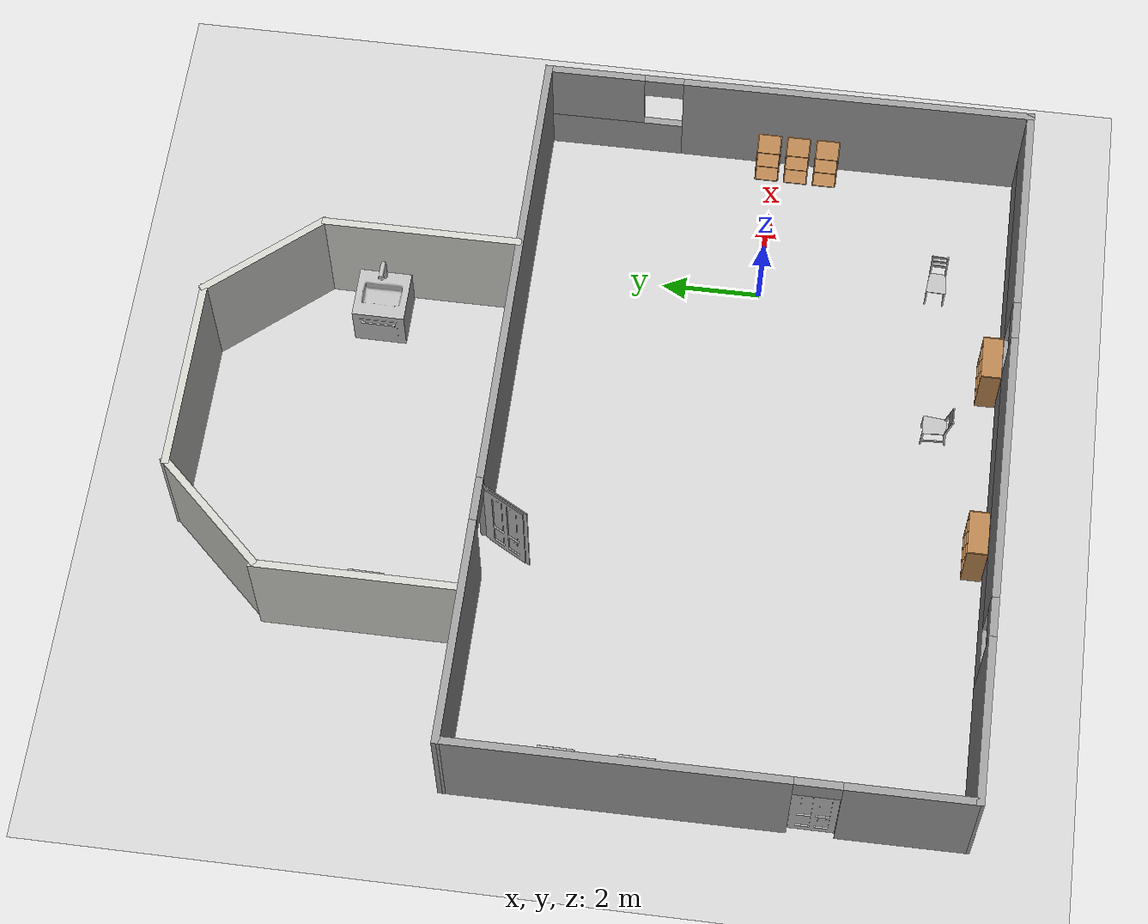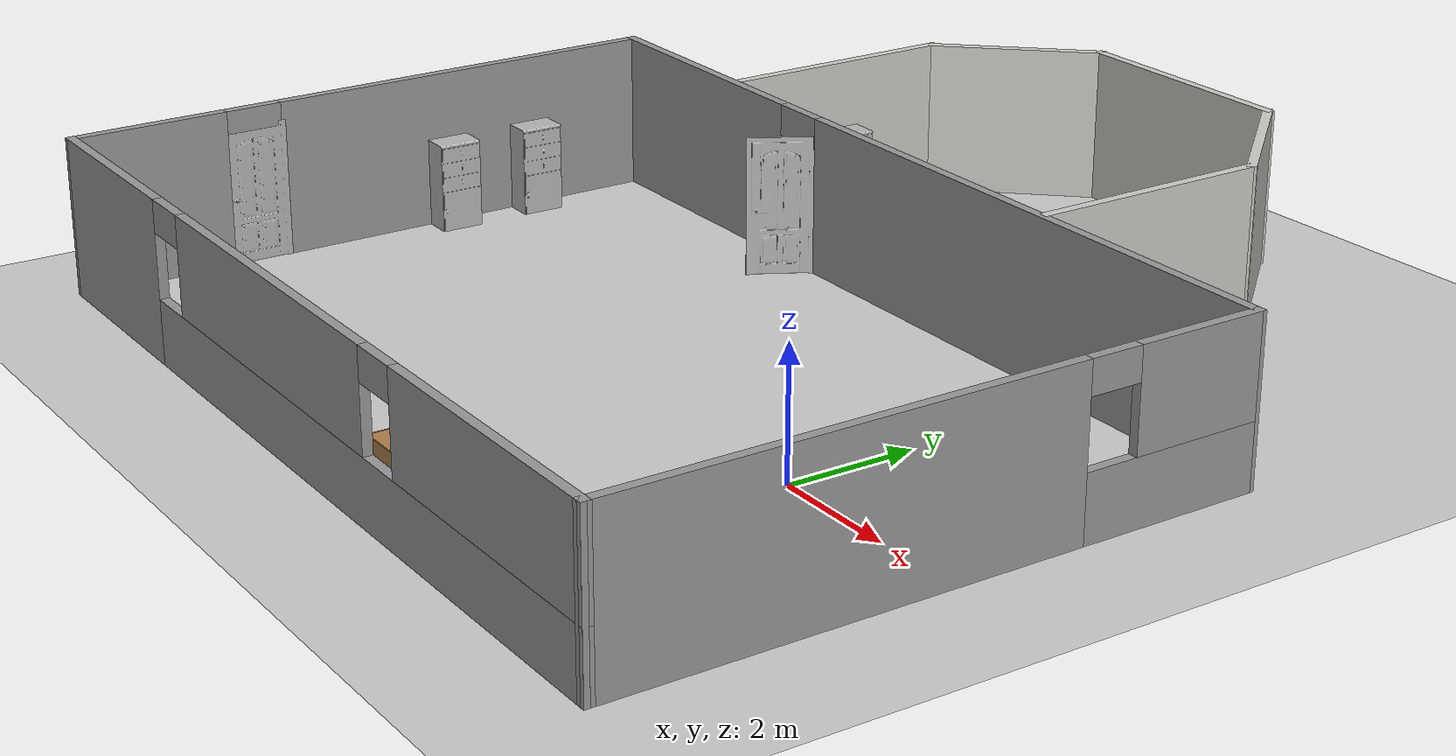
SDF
<sdf version="1.6">
 <world name="default">
  <light name="sun" type="directional">
   <pose>0 0 10 0 -0 0</pose>
   <diffuse>0.8 0.8 0.8 1</diffuse>
   <specular>0.2 0.2 0.2 1</specular>
   <attenuation>
    <range>1000</range>
    <constant>0.9</constant>
    <linear>0.01</linear>
    <quadratic>0.001</quadratic>
   </attenuation>
   <direction>-0.5 0.1 -0.9</direction>
  </light>
  <model name="ground_plane">
   <static>1</static>
   <link name="link">
    <collision name="collision">
     <geometry><plane><normal>0 0 1</normal><size>100 100</size></plane></geometry>
     <surface>
      <contact><collide_bitmask>65535</collide_bitmask></contact>
      <friction><ode><mu>100</mu><mu2>50</mu2></ode></friction>
     </surface>
    </collision>
    <visual name="visual">
     <cast_shadows>0</cast_shadows>
     <geometry><plane><normal>0 0 1</normal><size>100 100</size></plane></geometry>
     <material>
      <script><uri>file://media/materials/scripts/gazebo.material</uri><name>Gazebo/Grey</name></script>
     </material>
    </visual>
   </link>
  </model>
  <gravity>0 0 -9.8</gravity>
  <magnetic_field>6e-06 2.3e-05 -4.2e-05</magnetic_field>
  <atmosphere type="adiabatic"/>
  <physics name="default_physics" default="0" type="ode">
   <max_step_size>0.001</max_step_size>
   <real_time_factor>1</real_time_factor>
   <real_time_update_rate>1000</real_time_update_rate>
  </physics>
  <scene><ambient>0.4 0.4 0.4 1</ambient><background>0.7 0.7 0.7 1</background><shadows>1</shadows></scene>
  <audio><device>default</device></audio>
  <spherical_coordinates>
   <surface_model>EARTH_WGS84</surface_model>
   <latitude_deg>0</latitude_deg>
   <longitude_deg>0</longitude_deg>
   <elevation>0</elevation>
   <heading_deg>0</heading_deg>
  </spherical_coordinates>
  <model name="Hospital_Room">
   <pose>-4.04031 2.87685 0 0 -0 0</pose>
   <link name="Wall_0">
    <pose>0.023068 -7.9212 0 0 -0 -0.003591</pose>
    <visual name="Wall_0_Visual_0">
     <pose>-5.83368 0 1.25 0 -0 0</pose>
     <geometry><box><size>3.33264 0.15 2.5</size></box></geometry>
     <material>
      <script><uri>file://media/materials/scripts/gazebo.material</uri><name>Gazebo/Grey</name></script>
      <ambient>1 1 1 1</ambient>
     </material>
     <meta><layer>0</layer></meta>
    </visual>
    <collision name="Wall_0_Collision_0">
     <geometry><box><size>3.33264 0.15 2.5</size></box></geometry>
     <pose>-5.83368 0 1.25 0 -0 0</pose>
    </collision>
    <visual name="Wall_0_Visual_1">
     <pose>1.66632 0 0.5 0 -0 0</pose>
     <geometry><box><size>11.6674 0.15 1</size></box></geometry>
     <material>
      <script><uri>file://media/materials/scripts/gazebo.material</uri><name>Gazebo/Grey</name></script>
      <ambient>1 1 1 1</ambient>
     </material>
     <meta><layer>0</layer></meta>
    </visual>
    <collision name="Wall_0_Collision_1">
     <geometry><box><size>11.6674 0.15 1</size></box></geometry>
     <pose>1.66632 0 0.5 0 -0 0</pose>
    </collision>
    <visual name="Wall_0_Visual_2">
     <pose>-0.574742 0 1.75 0 -0 0</pose>
     <geometry><box><size>5.58524 0.15 1.5</size></box></geometry>
     <material>
      <script><uri>file://media/materials/scripts/gazebo.material</uri><name>Gazebo/Grey</name></script>
      <ambient>1 1 1 1</ambient>
     </material>
     <meta><layer>0</layer></meta>
    </visual>
    <collision name="Wall_0_Collision_2">
     <geometry><box><size>5.58524 0.15 1.5</size></box></geometry>
     <pose>-0.574742 0 1.75 0 -0 0</pose>
    </collision>
    <visual name="Wall_0_Visual_3">
     <pose>5.25894 0 1.75 0 -0 0</pose>
     <geometry><box><size>4.48212 0.15 1.5</size></box></geometry>
     <material>
      <script><uri>file://media/materials/scripts/gazebo.material</uri><name>Gazebo/Grey</name></script>
      <ambient>1 1 1 1</ambient>
     </material>
     <meta><layer>0</layer></meta>
    </visual>
    <collision name="Wall_0_Collision_3">
     <geometry><box><size>4.48212 0.15 1.5</size></box></geometry>
     <pose>5.25894 0 1.75 0 -0 0</pose>
    </collision>
    <visual name="Wall_0_Visual_4">
     <pose>-3.76736 0 2.25 0 -0 0</pose>
     <geometry><box><size>0.8 0.15 0.5</size></box></geometry>
     <material>
      <script><uri>file://media/materials/scripts/gazebo.material</uri><name>Gazebo/Grey</name></script>
      <ambient>1 1 1 1</ambient>
     </material>
     <meta><layer>0</layer></meta>
    </visual>
    <collision name="Wall_0_Collision_4">
     <geometry><box><size>0.8 0.15 0.5</size></box></geometry>
     <pose>-3.76736 0 2.25 0 -0 0</pose>
    </collision>
    <visual name="Wall_0_Visual_5">
     <pose>2.61788 0 2.25 0 -0 0</pose>
     <geometry><box><size>0.8 0.15 0.5</size></box></geometry>
     <material>
      <script><uri>file://media/materials/scripts/gazebo.material</uri><name>Gazebo/Grey</name></script>
      <ambient>1 1 1 1</ambient>
     </material>
     <meta><layer>0</layer></meta>
    </visual>
    <collision name="Wall_0_Collision_5">
     <geometry><box><size>0.8 0.15 0.5</size></box></geometry>
     <pose>2.61788 0 2.25 0 -0 0</pose>
    </collision>
   </link>
   <link name="Wall_1">
    <pose>7.42506 -3.02292 0 0 -0 1.57548</pose>
    <visual name="Wall_1_Visual_0">
     <pose>-1.42771 0 1.25 0 -0 0</pose>
     <geometry><box><size>7.14458 0.15 2.5</size></box></geometry>
     <material>
      <script><uri>file://media/materials/scripts/gazebo.material</uri><name>Gazebo/Grey</name></script>
      <ambient>1 1 1 1</ambient>
     </material>
     <meta><layer>0</layer></meta>
    </visual>
    <collision name="Wall_1_Collision_0">
     <geometry><box><size>7.14458 0.15 2.5</size></box></geometry>
     <pose>-1.42771 0 1.25 0 -0 0</pose>
    </collision>
    <visual name="Wall_1_Visual_1">
     <pose>3.57229 0 0.5 0 -0 0</pose>
     <geometry><box><size>2.85542 0.15 1</size></box></geometry>
     <material>
      <script><uri>file://media/materials/scripts/gazebo.material</uri><name>Gazebo/Grey</name></script>
      <ambient>1 1 1 1</ambient>
     </material>
     <meta><layer>0</layer></meta>
    </visual>
    <collision name="Wall_1_Collision_1">
     <geometry><box><size>2.85542 0.15 1</size></box></geometry>
     <pose>3.57229 0 0.5 0 -0 0</pose>
    </collision>
    <visual name="Wall_1_Visual_2">
     <pose>3.97229 0 1.75 0 -0 0</pose>
     <geometry><box><size>2.05542 0.15 1.5</size></box></geometry>
     <material>
      <script><uri>file://media/materials/scripts/gazebo.material</uri><name>Gazebo/Grey</name></script>
      <ambient>1 1 1 1</ambient>
     </material>
     <meta><layer>0</layer></meta>
    </visual>
    <collision name="Wall_1_Collision_2">
     <geometry><box><size>2.05542 0.15 1.5</size></box></geometry>
     <pose>3.97229 0 1.75 0 -0 0</pose>
    </collision>
    <visual name="Wall_1_Visual_3">
     <pose>2.54458 0 2.25 0 -0 0</pose>
     <geometry><box><size>0.8 0.15 0.5</size></box></geometry>
     <material>
      <script><uri>file://media/materials/scripts/gazebo.material</uri><name>Gazebo/Grey</name></script>
      <ambient>1 1 1 1</ambient>
     </material>
     <meta><layer>0</layer></meta>
    </visual>
    <collision name="Wall_1_Collision_3">
     <geometry><box><size>0.8 0.15 0.5</size></box></geometry>
     <pose>2.54458 0 2.25 0 -0 0</pose>
    </collision>
   </link>
   <link name="Wall_13">
    <collision name="Wall_13_Collision">
     <geometry><box><size>4 0.15 2.5</size></box></geometry>
     <pose>0 0 1.25 0 -0 0</pose>
    </collision>
    <visual name="Wall_13_Visual">
     <pose>0 0 1.25 0 -0 0</pose>
     <geometry><box><size>4 0.15 2.5</size></box></geometry>
     <material>
      <script><uri>file://media/materials/scripts/gazebo.material</uri><name>Gazebo/CeilingTiled</name></script>
      <ambient>1 1 1 1</ambient>
     </material>
     <meta><layer>0</layer></meta>
    </visual>
    <pose>-4.38514 3.96612 0 0 -0 1.5708</pose>
   </link>
   <link name="Wall_14">
    <collision name="Wall_14_Collision">
     <geometry><box><size>2.91751 0.15 2.5</size></box></geometry>
     <pose>0 0 1.25 0 -0 0</pose>
    </collision>
    <visual name="Wall_14_Visual">
     <pose>0 0 1.25 0 -0 0</pose>
     <geometry><box><size>2.91751 0.15 2.5</size></box></geometry>
     <material>
      <script><uri>file://media/materials/scripts/gazebo.material</uri><name>Gazebo/CeilingTiled</name></script>
      <ambient>1 1 1 1</ambient>
     </material>
     <meta><layer>0</layer></meta>
    </visual>
    <pose>-3.40219 6.90413 0 0 -0 0.821445</pose>
   </link>
   <link name="Wall_15">
    <collision name="Wall_15_Collision">
     <geometry><box><size>4 0.15 2.5</size></box></geometry>
     <pose>0 0 1.25 0 -0 0</pose>
    </collision>
    <visual name="Wall_15_Visual">
     <pose>0 0 1.25 0 -0 0</pose>
     <geometry><box><size>4 0.15 2.5</size></box></geometry>
     <material>
      <script><uri>file://media/materials/scripts/gazebo.material</uri><name>Gazebo/CeilingTiled</name></script>
      <ambient>1 1 1 1</ambient>
     </material>
     <meta><layer>0</layer></meta>
    </visual>
    <pose>-0.534694 7.91715 0 0 -0 0</pose>
   </link>
   <link name="Wall_16">
    <collision name="Wall_16_Collision">
     <geometry><box><size>2.89764 0.15 2.5</size></box></geometry>
     <pose>0 0 1.25 0 -0 0</pose>
    </collision>
    <visual name="Wall_16_Visual">
     <pose>0 0 1.25 0 -0 0</pose>
     <geometry><box><size>2.89764 0.15 2.5</size></box></geometry>
     <material>
      <script><uri>file://media/materials/scripts/gazebo.material</uri><name>Gazebo/CeilingTiled</name></script>
      <ambient>1 1 1 1</ambient>
     </material>
     <meta><layer>0</layer></meta>
    </visual>
    <pose>2.29431 6.88267 0 0 -0 -0.852606</pose>
   </link>
   <link name="Wall_17">
    <collision name="Wall_17_Collision">
     <geometry><box><size>4 0.15 2.5</size></box></geometry>
     <pose>0 0 1.25 0 -0 0</pose>
    </collision>
    <visual name="Wall_17_Visual">
     <pose>0 0 1.25 0 -0 0</pose>
     <geometry><box><size>4 0.15 2.5</size></box></geometry>
     <material>
      <script><uri>file://media/materials/scripts/gazebo.material</uri><name>Gazebo/CeilingTiled</name></script>
      <ambient>1 1 1 1</ambient>
     </material>
     <meta><layer>0</layer></meta>
    </visual>
    <pose>3.19831 3.88273 0 0 -0 -1.5708</pose>
   </link>
   <link name="Wall_2">
    <pose>-0.023068 1.92869 0 0 -0 3.138</pose>
    <visual name="Wall_2_Visual_0">
     <pose>-2.72208 0 1.25 0 -0 0</pose>
     <geometry><box><size>9.55585 0.15 2.5</size></box></geometry>
     <material>
      <script><uri>file://media/materials/scripts/gazebo.material</uri><name>Gazebo/Grey</name></script>
      <ambient>1 1 1 1</ambient>
     </material>
     <meta><layer>0</layer></meta>
    </visual>
    <collision name="Wall_2_Collision_0">
     <geometry><box><size>9.55585 0.15 2.5</size></box></geometry>
     <pose>-2.72208 0 1.25 0 -0 0</pose>
    </collision>
    <visual name="Wall_2_Visual_1">
     <pose>5.22792 0 1.25 0 -0 0</pose>
     <geometry><box><size>4.54415 0.15 2.5</size></box></geometry>
     <material>
      <script><uri>file://media/materials/scripts/gazebo.material</uri><name>Gazebo/Grey</name></script>
      <ambient>1 1 1 1</ambient>
     </material>
     <meta><layer>0</layer></meta>
    </visual>
    <collision name="Wall_2_Collision_1">
     <geometry><box><size>4.54415 0.15 2.5</size></box></geometry>
     <pose>5.22792 0 1.25 0 -0 0</pose>
    </collision>
    <visual name="Wall_2_Visual_2">
     <pose>2.50585 0 2.25 0 -0 0</pose>
     <geometry><box><size>0.9 0.15 0.5</size></box></geometry>
     <material>
      <script><uri>file://media/materials/scripts/gazebo.material</uri><name>Gazebo/Grey</name></script>
      <ambient>1 1 1 1</ambient>
     </material>
     <meta><layer>0</layer></meta>
    </visual>
    <collision name="Wall_2_Collision_2">
     <geometry><box><size>0.9 0.15 0.5</size></box></geometry>
     <pose>2.50585 0 2.25 0 -0 0</pose>
    </collision>
   </link>
   <link name="Wall_20">
    <pose>-7.42506 -2.96959 0 0 -0 -1.56611</pose>
    <visual name="Wall_20_Visual_0">
     <pose>-1.71575 0 1.25 0 -0 0</pose>
     <geometry><box><size>6.5685 0.15 2.5</size></box></geometry>
     <material>
      <script><uri>file://media/materials/scripts/gazebo.material</uri><name>Gazebo/Grey</name></script>
      <ambient>1 1 1 1</ambient>
     </material>
     <meta><layer>0</layer></meta>
    </visual>
    <collision name="Wall_20_Collision_0">
     <geometry><box><size>6.5685 0.15 2.5</size></box></geometry>
     <pose>-1.71575 0 1.25 0 -0 0</pose>
    </collision>
    <visual name="Wall_20_Visual_1">
     <pose>3.73425 0 1.25 0 -0 0</pose>
     <geometry><box><size>2.5315 0.15 2.5</size></box></geometry>
     <material>
      <script><uri>file://media/materials/scripts/gazebo.material</uri><name>Gazebo/Grey</name></script>
      <ambient>1 1 1 1</ambient>
     </material>
     <meta><layer>0</layer></meta>
    </visual>
    <collision name="Wall_20_Collision_1">
     <geometry><box><size>2.5315 0.15 2.5</size></box></geometry>
     <pose>3.73425 0 1.25 0 -0 0</pose>
    </collision>
    <visual name="Wall_20_Visual_2">
     <pose>2.0185 0 2.25 0 -0 0</pose>
     <geometry><box><size>0.9 0.15 0.5</size></box></geometry>
     <material>
      <script><uri>file://media/materials/scripts/gazebo.material</uri><name>Gazebo/Grey</name></script>
      <ambient>1 1 1 1</ambient>
     </material>
     <meta><layer>0</layer></meta>
    </visual>
    <collision name="Wall_20_Collision_2">
     <geometry><box><size>0.9 0.15 0.5</size></box></geometry>
     <pose>2.0185 0 2.25 0 -0 0</pose>
    </collision>
   </link>
   <static>1</static>
  </model>
  <model name="chair">
   <static>1</static>
   <link name="link">
    <collision name="collision">
     <pose>0 0 0.3 0 -0 0</pose>
     <geometry><mesh><uri>model://chair/meshes/chair.stl</uri></mesh></geometry>
     <surface>
      <friction><ode><mu>1</mu><mu2>1</mu2></ode></friction>
      <contact><ode><kp>1e+07</kp><kd>1</kd><min_depth>0.001</min_depth><max_vel>0.1</max_vel></ode></contact>
     </surface>
    </collision>
    <visual name="visual">
     <pose>0 0 0.3 0 -0 0</pose>
     <geometry><mesh><uri>model://chair/meshes/chair.stl</uri></mesh></geometry>
    </visual>
   </link>
   <pose>-3.13467 -4.06597 -0.450808 0 -0 1.57531</pose>
  </model>
  <model name="chair_clone">
   <static>1</static>
   <link name="link">
    <collision name="collision">
     <pose>0 0 0.3 0 -0 0</pose>
     <geometry><mesh><uri>model://chair/meshes/chair.stl</uri></mesh></geometry>
     <surface>
      <friction><ode><mu>1</mu><mu2>1</mu2></ode></friction>
      <contact><ode><kp>1e+07</kp><kd>1</kd><min_depth>0.001</min_depth><max_vel>0.1</max_vel></ode></contact>
     </surface>
    </collision>
    <visual name="visual">
     <pose>0 0 0.3 0 -0 0</pose>
     <geometry><mesh><uri>model://chair/meshes/chair.stl</uri></mesh></geometry>
    </visual>
   </link>
   <pose>0.765354 -3.8963 -0.450808 0 -0 3.10751</pose>
  </model>
  <model name="faucet">
   <static>1</static>
   <link name="link">
    <collision name="collision">
     <geometry><mesh><uri>model://faucet/meshes/f.stl</uri></mesh></geometry>
     <surface>
      <friction><ode><mu>1</mu><mu2>1</mu2></ode></friction>
      <contact><ode><kp>1e+07</kp><kd>1</kd><min_depth>0.001</min_depth><max_vel>0.1</max_vel></ode></contact>
     </surface>
    </collision>
    <visual name="visual"><geometry><mesh><uri>model://faucet/meshes/f.stl</uri></mesh></geometry></visual>
   </link>
   <pose>-1.12536 7.55333 0 0 -0 1.56284</pose>
  </model>
  <model name="cupboard">
   <static>1</static>
   <link name="link">
    <collision name="collision">
     <geometry><mesh><uri>model://cupboard/meshes/cb.stl</uri></mesh></geometry>
     <surface>
      <friction><ode><mu>1</mu><mu2>1</mu2></ode></friction>
      <contact><ode><kp>1e+07</kp><kd>1</kd><min_depth>0.001</min_depth><max_vel>0.1</max_vel></ode></contact>
     </surface>
    </collision>
    <visual name="visual"><geometry><mesh><uri>model://cupboard/meshes/cb.stl</uri></mesh></geometry></visual>
   </link>
   <pose>-11.2325 1.22177 0 0 -0 1.55635</pose>
  </model>
  <model name="cupboard_clone">
   <static>1</static>
   <link name="link">
    <collision name="collision">
     <geometry><mesh><uri>model://cupboard/meshes/cb.stl</uri></mesh></geometry>
     <surface>
      <friction><ode><mu>1</mu><mu2>1</mu2></ode></friction>
      <contact><ode><kp>1e+07</kp><kd>1</kd><min_depth>0.001</min_depth><max_vel>0.1</max_vel></ode></contact>
     </surface>
    </collision>
    <visual name="visual"><geometry><mesh><uri>model://cupboard/meshes/cb.stl</uri></mesh></geometry></visual>
   </link>
   <pose>-11.2385 2.73171 0 0 -0 1.55635</pose>
  </model>
  <model name="bookshelf">
   <static>1</static>
   <link name="link">
    <inertial><mass>1</mass></inertial>
    <collision name="back">
     <pose>0 0.005 0.6 0 -0 0</pose>
     <geometry><box><size>0.9 0.01 1.2</size></box></geometry>
    </collision>
    <visual name="visual1">
     <pose>0 0.005 0.6 0 -0 0</pose>
     <geometry><box><size>0.9 0.01 1.2</size></box></geometry>
     <material>
      <script><uri>file://media/materials/scripts/gazebo.material</uri><name>Gazebo/Wood</name></script>
     </material>
    </visual>
    <collision name="left_side">
     <pose>0.45 -0.195 0.6 0 -0 0</pose>
     <geometry><box><size>0.02 0.4 1.2</size></box></geometry>
    </collision>
    <visual name="visual2">
     <pose>0.45 -0.195 0.6 0 -0 0</pose>
     <geometry><box><size>0.02 0.4 1.2</size></box></geometry>
     <material>
      <script><uri>file://media/materials/scripts/gazebo.material</uri><name>Gazebo/Wood</name></script>
     </material>
    </visual>
    <collision name="right_side">
     <pose>-0.45 -0.195 0.6 0 -0 0</pose>
     <geometry><box><size>0.02 0.4 1.2</size></box></geometry>
    </collision>
    <visual name="visual3">
     <pose>-0.45 -0.195 0.6 0 -0 0</pose>
     <geometry><box><size>0.02 0.4 1.2</size></box></geometry>
     <material>
      <script><uri>file://media/materials/scripts/gazebo.material</uri><name>Gazebo/Wood</name></script>
     </material>
    </visual>
    <collision name="bottom">
     <pose>0 -0.195 0.03 0 -0 0</pose>
     <geometry><box><size>0.88 0.4 0.06</size></box></geometry>
    </collision>
    <visual name="visual4">
     <pose>0 -0.195 0.03 0 -0 0</pose>
     <geometry><box><size>0.88 0.4 0.06</size></box></geometry>
     <material>
      <script><uri>file://media/materials/scripts/gazebo.material</uri><name>Gazebo/Wood</name></script>
     </material>
    </visual>
    <collision name="top">
     <pose>0 -0.195 1.19 0 -0 0</pose>
     <geometry><box><size>0.88 0.4 0.02</size></box></geometry>
    </collision>
    <visual name="visual5">
     <pose>0 -0.195 1.19 0 -0 0</pose>
     <geometry><box><size>0.88 0.4 0.02</size></box></geometry>
     <material>
      <script><uri>file://media/materials/scripts/gazebo.material</uri><name>Gazebo/Wood</name></script>
     </material>
    </visual>
    <collision name="low_shelf">
     <pose>0 -0.195 0.43 0 -0 0</pose>
     <geometry><box><size>0.88 0.4 0.02</size></box></geometry>
    </collision>
    <visual name="visual6">
     <pose>0 -0.195 0.43 0 -0 0</pose>
     <geometry><box><size>0.88 0.4 0.02</size></box></geometry>
     <material>
      <script><uri>file://media/materials/scripts/gazebo.material</uri><name>Gazebo/Wood</name></script>
     </material>
    </visual>
    <collision name="high_shelf">
     <pose>0 -0.195 0.8 0 -0 0</pose>
     <geometry><box><size>0.88 0.4 0.02</size></box></geometry>
    </collision>
    <visual name="visual7">
     <pose>0 -0.195 0.8 0 -0 0</pose>
     <geometry><box><size>0.88 0.4 0.02</size></box></geometry>
     <material>
      <script><uri>file://media/materials/scripts/gazebo.material</uri><name>Gazebo/Wood</name></script>
     </material>
    </visual>
   </link>
   <pose>-5.44544 -4.93533 0 0 0 -3.13845</pose>
  </model>
  <model name="bookshelf_clone">
   <static>1</static>
   <link name="link">
    <inertial><mass>1</mass></inertial>
    <collision name="back">
     <pose>0 0.005 0.6 0 -0 0</pose>
     <geometry><box><size>0.9 0.01 1.2</size></box></geometry>
    </collision>
    <visual name="visual1">
     <pose>0 0.005 0.6 0 -0 0</pose>
     <geometry><box><size>0.9 0.01 1.2</size></box></geometry>
     <material>
      <script><uri>file://media/materials/scripts/gazebo.material</uri><name>Gazebo/Wood</name></script>
     </material>
    </visual>
    <collision name="left_side">
     <pose>0.45 -0.195 0.6 0 -0 0</pose>
     <geometry><box><size>0.02 0.4 1.2</size></box></geometry>
    </collision>
    <visual name="visual2">
     <pose>0.45 -0.195 0.6 0 -0 0</pose>
     <geometry><box><size>0.02 0.4 1.2</size></box></geometry>
     <material>
      <script><uri>file://media/materials/scripts/gazebo.material</uri><name>Gazebo/Wood</name></script>
     </material>
    </visual>
    <collision name="right_side">
     <pose>-0.45 -0.195 0.6 0 -0 0</pose>
     <geometry><box><size>0.02 0.4 1.2</size></box></geometry>
    </collision>
    <visual name="visual3">
     <pose>-0.45 -0.195 0.6 0 -0 0</pose>
     <geometry><box><size>0.02 0.4 1.2</size></box></geometry>
     <material>
      <script><uri>file://media/materials/scripts/gazebo.material</uri><name>Gazebo/Wood</name></script>
     </material>
    </visual>
    <collision name="bottom">
     <pose>0 -0.195 0.03 0 -0 0</pose>
     <geometry><box><size>0.88 0.4 0.06</size></box></geometry>
    </collision>
    <visual name="visual4">
     <pose>0 -0.195 0.03 0 -0 0</pose>
     <geometry><box><size>0.88 0.4 0.06</size></box></geometry>
     <material>
      <script><uri>file://media/materials/scripts/gazebo.material</uri><name>Gazebo/Wood</name></script>
     </material>
    </visual>
    <collision name="top">
     <pose>0 -0.195 1.19 0 -0 0</pose>
     <geometry><box><size>0.88 0.4 0.02</size></box></geometry>
    </collision>
    <visual name="visual5">
     <pose>0 -0.195 1.19 0 -0 0</pose>
     <geometry><box><size>0.88 0.4 0.02</size></box></geometry>
     <material>
      <script><uri>file://media/materials/scripts/gazebo.material</uri><name>Gazebo/Wood</name></script>
     </material>
    </visual>
    <collision name="low_shelf">
     <pose>0 -0.195 0.43 0 -0 0</pose>
     <geometry><box><size>0.88 0.4 0.02</size></box></geometry>
    </collision>
    <visual name="visual6">
     <pose>0 -0.195 0.43 0 -0 0</pose>
     <geometry><box><size>0.88 0.4 0.02</size></box></geometry>
     <material>
      <script><uri>file://media/materials/scripts/gazebo.material</uri><name>Gazebo/Wood</name></script>
     </material>
    </visual>
    <collision name="high_shelf">
     <pose>0 -0.195 0.8 0 -0 0</pose>
     <geometry><box><size>0.88 0.4 0.02</size></box></geometry>
    </collision>
    <visual name="visual7">
     <pose>0 -0.195 0.8 0 -0 0</pose>
     <geometry><box><size>0.88 0.4 0.02</size></box></geometry>
     <material>
      <script><uri>file://media/materials/scripts/gazebo.material</uri><name>Gazebo/Wood</name></script>
     </material>
    </visual>
   </link>
   <pose>-1.54129 -4.9514 0 0 0 -3.13845</pose>
  </model>
  <model name="cabinet">
   <static>1</static>
   <link name="cabinet_bottom_plate">
    <inertial>
     <pose>0 0 -1 0 -0 0</pose>
     <inertia><ixx>2.05</ixx><ixy>0</ixy><ixz>0</ixz><iyy>2.05</iyy><iyz>0</iyz><izz>2.05</izz></inertia>
     <mass>25</mass>
    </inertial>
    <collision name="cabinet_bottom_plate_geom">
     <pose>0 0 0.01 0 -0 0</pose>
     <geometry><box><size>0.45 0.45 0.02</size></box></geometry>
    </collision>
    <visual name="cabinet_bottom_plate_geom_visual">
     <pose>0 0 0.01 0 -0 0</pose>
     <geometry><box><size>0.45 0.45 0.02</size></box></geometry>
     <material>
      <script><uri>file://media/materials/scripts/gazebo.material</uri><name>Gazebo/Wood</name></script>
     </material>
    </visual>
    <collision name="cabinet_bottom_plate_geom_cabinet_back_plate">
     <pose>0.235 0 0.51 0 -0 0</pose>
     <geometry><box><size>0.02 0.45 1.02</size></box></geometry>
    </collision>
    <visual name="cabinet_bottom_plate_geom_cabinet_back_plate_visual">
     <pose>0.235 0 0.51 0 -0 0</pose>
     <geometry><box><size>0.02 0.45 1.02</size></box></geometry>
     <material>
      <script><uri>file://media/materials/scripts/gazebo.material</uri><name>Gazebo/Wood</name></script>
     </material>
    </visual>
    <collision name="cabinet_bottom_plate_geom_cabinet_left_plate">
     <pose>0 0.235 0.51 0 -0 0</pose>
     <geometry><box><size>0.45 0.02 1.02</size></box></geometry>
    </collision>
    <visual name="cabinet_bottom_plate_geom_cabinet_left_plate_visual">
     <pose>0 0.235 0.51 0 -0 0</pose>
     <geometry><box><size>0.45 0.02 1.02</size></box></geometry>
     <material>
      <script><uri>file://media/materials/scripts/gazebo.material</uri><name>Gazebo/Wood</name></script>
     </material>
    </visual>
    <collision name="cabinet_bottom_plate_geom_cabinet_middle_plate">
     <pose>0 0 0.51 0 -0 0</pose>
     <geometry><box><size>0.45 0.45 0.02</size></box></geometry>
    </collision>
    <visual name="cabinet_bottom_plate_geom_cabinet_middle_plate_visual">
     <pose>0 0 0.51 0 -0 0</pose>
     <geometry><box><size>0.45 0.45 0.02</size></box></geometry>
     <material>
      <script><uri>file://media/materials/scripts/gazebo.material</uri><name>Gazebo/Wood</name></script>
     </material>
    </visual>
    <collision name="cabinet_bottom_plate_geom_cabinet_right_plate">
     <pose>0 -0.235 0.51 0 -0 0</pose>
     <geometry><box><size>0.45 0.02 1.02</size></box></geometry>
    </collision>
    <visual name="cabinet_bottom_plate_geom_cabinet_right_plate_visual">
     <pose>0 -0.235 0.51 0 -0 0</pose>
     <geometry><box><size>0.45 0.02 1.02</size></box></geometry>
     <material>
      <script><uri>file://media/materials/scripts/gazebo.material</uri><name>Gazebo/Wood</name></script>
     </material>
    </visual>
    <collision name="cabinet_bottom_plate_geom_cabinet_top_plate">
     <pose>0 0 1.01 0 -0 0</pose>
     <geometry><box><size>0.45 0.45 0.02</size></box></geometry>
    </collision>
    <visual name="cabinet_bottom_plate_geom_cabinet_top_plate_visual">
     <pose>0 0 1.01 0 -0 0</pose>
     <geometry><box><size>0.45 0.45 0.02</size></box></geometry>
     <material>
      <script><uri>file://media/materials/scripts/gazebo.material</uri><name>Gazebo/Wood</name></script>
     </material>
    </visual>
   </link>
   <pose>3.07018 0.142329 0 0 -0 0</pose>
  </model>
  <model name="cabinet_clone">
   <static>1</static>
   <link name="cabinet_bottom_plate">
    <inertial>
     <pose>0 0 -1 0 -0 0</pose>
     <inertia><ixx>2.05</ixx><ixy>0</ixy><ixz>0</ixz><iyy>2.05</iyy><iyz>0</iyz><izz>2.05</izz></inertia>
     <mass>25</mass>
    </inertial>
    <collision name="cabinet_bottom_plate_geom">
     <pose>0 0 0.01 0 -0 0</pose>
     <geometry><box><size>0.45 0.45 0.02</size></box></geometry>
    </collision>
    <visual name="cabinet_bottom_plate_geom_visual">
     <pose>0 0 0.01 0 -0 0</pose>
     <geometry><box><size>0.45 0.45 0.02</size></box></geometry>
     <material>
      <script><uri>file://media/materials/scripts/gazebo.material</uri><name>Gazebo/Wood</name></script>
     </material>
    </visual>
    <collision name="cabinet_bottom_plate_geom_cabinet_back_plate">
     <pose>0.235 0 0.51 0 -0 0</pose>
     <geometry><box><size>0.02 0.45 1.02</size></box></geometry>
    </collision>
    <visual name="cabinet_bottom_plate_geom_cabinet_back_plate_visual">
     <pose>0.235 0 0.51 0 -0 0</pose>
     <geometry><box><size>0.02 0.45 1.02</size></box></geometry>
     <material>
      <script><uri>file://media/materials/scripts/gazebo.material</uri><name>Gazebo/Wood</name></script>
     </material>
    </visual>
    <collision name="cabinet_bottom_plate_geom_cabinet_left_plate">
     <pose>0 0.235 0.51 0 -0 0</pose>
     <geometry><box><size>0.45 0.02 1.02</size></box></geometry>
    </collision>
    <visual name="cabinet_bottom_plate_geom_cabinet_left_plate_visual">
     <pose>0 0.235 0.51 0 -0 0</pose>
     <geometry><box><size>0.45 0.02 1.02</size></box></geometry>
     <material>
      <script><uri>file://media/materials/scripts/gazebo.material</uri><name>Gazebo/Wood</name></script>
     </material>
    </visual>
    <collision name="cabinet_bottom_plate_geom_cabinet_middle_plate">
     <pose>0 0 0.51 0 -0 0</pose>
     <geometry><box><size>0.45 0.45 0.02</size></box></geometry>
    </collision>
    <visual name="cabinet_bottom_plate_geom_cabinet_middle_plate_visual">
     <pose>0 0 0.51 0 -0 0</pose>
     <geometry><box><size>0.45 0.45 0.02</size></box></geometry>
     <material>
      <script><uri>file://media/materials/scripts/gazebo.material</uri><name>Gazebo/Wood</name></script>
     </material>
    </visual>
    <collision name="cabinet_bottom_plate_geom_cabinet_right_plate">
     <pose>0 -0.235 0.51 0 -0 0</pose>
     <geometry><box><size>0.45 0.02 1.02</size></box></geometry>
    </collision>
    <visual name="cabinet_bottom_plate_geom_cabinet_right_plate_visual">
     <pose>0 -0.235 0.51 0 -0 0</pose>
     <geometry><box><size>0.45 0.02 1.02</size></box></geometry>
     <material>
      <script><uri>file://media/materials/scripts/gazebo.material</uri><name>Gazebo/Wood</name></script>
     </material>
    </visual>
    <collision name="cabinet_bottom_plate_geom_cabinet_top_plate">
     <pose>0 0 1.01 0 -0 0</pose>
     <geometry><box><size>0.45 0.45 0.02</size></box></geometry>
    </collision>
    <visual name="cabinet_bottom_plate_geom_cabinet_top_plate_visual">
     <pose>0 0 1.01 0 -0 0</pose>
     <geometry><box><size>0.45 0.45 0.02</size></box></geometry>
     <material>
      <script><uri>file://media/materials/scripts/gazebo.material</uri><name>Gazebo/Wood</name></script>
     </material>
    </visual>
   </link>
   <pose>3.06506 -0.459474 0 0 -0 0</pose>
  </model>
  <model name="cabinet_clone_0">
   <static>1</static>
   <link name="cabinet_bottom_plate">
    <inertial>
     <pose>0 0 -1 0 -0 0</pose>
     <inertia><ixx>2.05</ixx><ixy>0</ixy><ixz>0</ixz><iyy>2.05</iyy><iyz>0</iyz><izz>2.05</izz></inertia>
     <mass>25</mass>
    </inertial>
    <collision name="cabinet_bottom_plate_geom">
     <pose>0 0 0.01 0 -0 0</pose>
     <geometry><box><size>0.45 0.45 0.02</size></box></geometry>
    </collision>
    <visual name="cabinet_bottom_plate_geom_visual">
     <pose>0 0 0.01 0 -0 0</pose>
     <geometry><box><size>0.45 0.45 0.02</size></box></geometry>
     <material>
      <script><uri>file://media/materials/scripts/gazebo.material</uri><name>Gazebo/Wood</name></script>
     </material>
    </visual>
    <collision name="cabinet_bottom_plate_geom_cabinet_back_plate">
     <pose>0.235 0 0.51 0 -0 0</pose>
     <geometry><box><size>0.02 0.45 1.02</size></box></geometry>
    </collision>
    <visual name="cabinet_bottom_plate_geom_cabinet_back_plate_visual">
     <pose>0.235 0 0.51 0 -0 0</pose>
     <geometry><box><size>0.02 0.45 1.02</size></box></geometry>
     <material>
      <script><uri>file://media/materials/scripts/gazebo.material</uri><name>Gazebo/Wood</name></script>
     </material>
    </visual>
    <collision name="cabinet_bottom_plate_geom_cabinet_left_plate">
     <pose>0 0.235 0.51 0 -0 0</pose>
     <geometry><box><size>0.45 0.02 1.02</size></box></geometry>
    </collision>
    <visual name="cabinet_bottom_plate_geom_cabinet_left_plate_visual">
     <pose>0 0.235 0.51 0 -0 0</pose>
     <geometry><box><size>0.45 0.02 1.02</size></box></geometry>
     <material>
      <script><uri>file://media/materials/scripts/gazebo.material</uri><name>Gazebo/Wood</name></script>
     </material>
    </visual>
    <collision name="cabinet_bottom_plate_geom_cabinet_middle_plate">
     <pose>0 0 0.51 0 -0 0</pose>
     <geometry><box><size>0.45 0.45 0.02</size></box></geometry>
    </collision>
    <visual name="cabinet_bottom_plate_geom_cabinet_middle_plate_visual">
     <pose>0 0 0.51 0 -0 0</pose>
     <geometry><box><size>0.45 0.45 0.02</size></box></geometry>
     <material>
      <script><uri>file://media/materials/scripts/gazebo.material</uri><name>Gazebo/Wood</name></script>
     </material>
    </visual>
    <collision name="cabinet_bottom_plate_geom_cabinet_right_plate">
     <pose>0 -0.235 0.51 0 -0 0</pose>
     <geometry><box><size>0.45 0.02 1.02</size></box></geometry>
    </collision>
    <visual name="cabinet_bottom_plate_geom_cabinet_right_plate_visual">
     <pose>0 -0.235 0.51 0 -0 0</pose>
     <geometry><box><size>0.45 0.02 1.02</size></box></geometry>
     <material>
      <script><uri>file://media/materials/scripts/gazebo.material</uri><name>Gazebo/Wood</name></script>
     </material>
    </visual>
    <collision name="cabinet_bottom_plate_geom_cabinet_top_plate">
     <pose>0 0 1.01 0 -0 0</pose>
     <geometry><box><size>0.45 0.45 0.02</size></box></geometry>
    </collision>
    <visual name="cabinet_bottom_plate_geom_cabinet_top_plate_visual">
     <pose>0 0 1.01 0 -0 0</pose>
     <geometry><box><size>0.45 0.45 0.02</size></box></geometry>
     <material>
      <script><uri>file://media/materials/scripts/gazebo.material</uri><name>Gazebo/Wood</name></script>
     </material>
    </visual>
   </link>
   <pose>3.06525 -1.0675 0 0 -0 0</pose>
  </model>
  <model name="cupboard_clone_clone">
   <static>1</static>
   <link name="link">
    <collision name="collision">
     <geometry><mesh><uri>model://cupboard/meshes/cb.stl</uri></mesh></geometry>
     <surface>
      <friction><ode><mu>1</mu><mu2>1</mu2></ode></friction>
      <contact><ode><kp>1e+07</kp><kd>1</kd><min_depth>0.001</min_depth><max_vel>0.1</max_vel></ode></contact>
     </surface>
    </collision>
    <visual name="visual"><geometry><mesh><uri>model://cupboard/meshes/cb.stl</uri></mesh></geometry></visual>
   </link>
   <pose>-8.13245 6.78812 0 0 -0 1.55635</pose>
  </model>
  <model name="door">
   <static>1</static>
   <link name="link">
    <collision name="collision">
     <geometry><mesh><uri>model://door/meshes/d.stl</uri></mesh></geometry>
     <surface>
      <friction><ode><mu>1</mu><mu2>1</mu2></ode></friction>
      <contact><ode><kp>1e+07</kp><kd>1</kd><min_depth>0.001</min_depth><max_vel>0.1</max_vel></ode></contact>
     </surface>
    </collision>
    <visual name="visual"><geometry><mesh><uri>model://door/meshes/d.stl</uri></mesh></geometry></visual>
   </link>
   <pose>-11.3934 -2.12163 0 0 -0 0</pose>
  </model>
  <model name="door_0">
   <static>1</static>
   <link name="link">
    <collision name="collision">
     <geometry><mesh><uri>model://door/meshes/d.stl</uri></mesh></geometry>
     <surface>
      <friction><ode><mu>1</mu><mu2>1</mu2></ode></friction>
      <contact><ode><kp>1e+07</kp><kd>1</kd><min_depth>0.001</min_depth><max_vel>0.1</max_vel></ode></contact>
     </surface>
    </collision>
    <visual name="visual"><geometry><mesh><uri>model://door/meshes/d.stl</uri></mesh></geometry></visual>
   </link>
   <pose>-6.38702 4.30429 0 0 0 -0.51154</pose>
  </model>
 </world>
</sdf>
